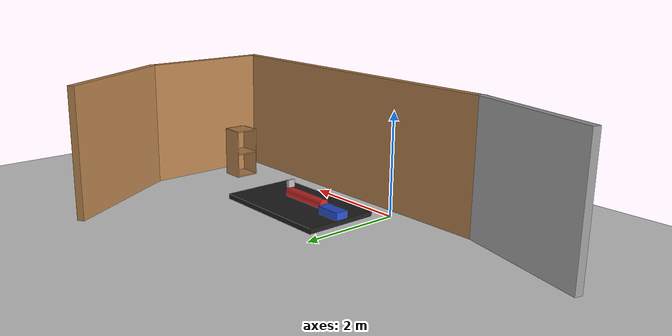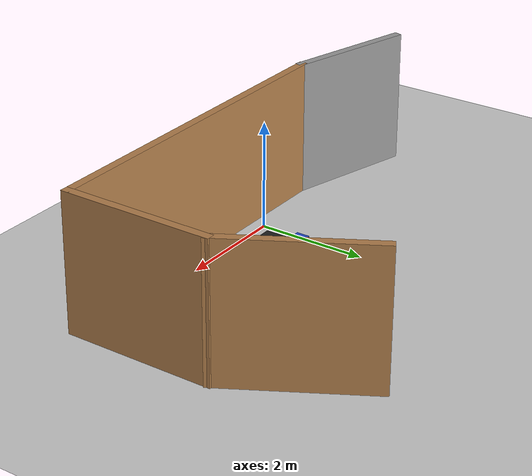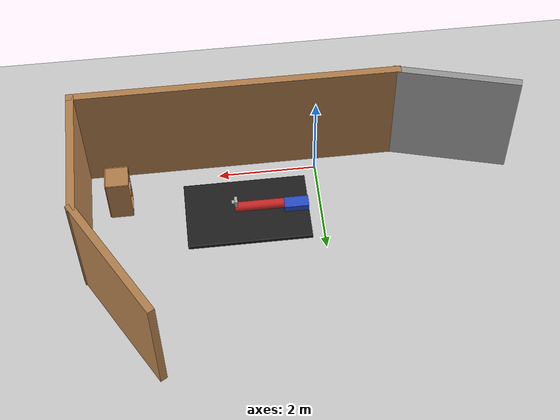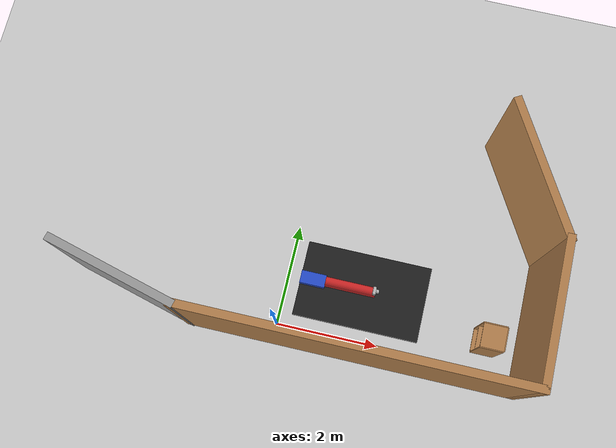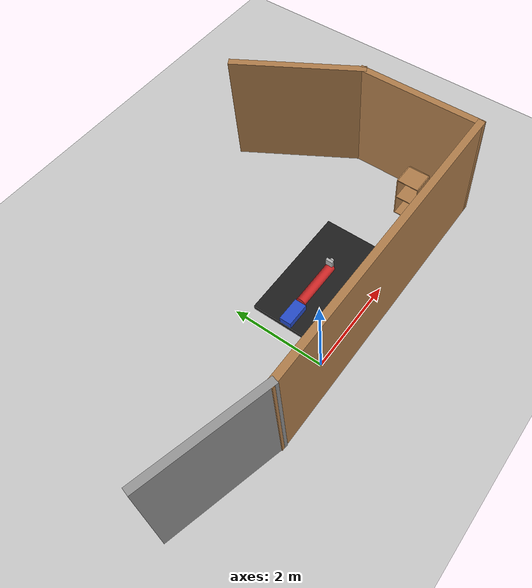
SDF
<sdf version="1.7">
 <world name="default">
  <light name="sun" type="directional">
   <pose>0 0 10 0 -0 0</pose>
   <diffuse>0.8 0.8 0.8 1</diffuse>
   <specular>0.2 0.2 0.2 1</specular>
   <attenuation>
    <range>1000</range>
    <constant>0.9</constant>
    <linear>0.01</linear>
    <quadratic>0.001</quadratic>
   </attenuation>
   <direction>-0.5 0.1 -0.9</direction>
   <spot><inner_angle>0</inner_angle><outer_angle>0</outer_angle><falloff>0</falloff></spot>
  </light>
  <model name="ground_plane">
   <static>1</static>
   <link name="link">
    <collision name="collision">
     <geometry><plane><normal>0 0 1</normal><size>100 100</size></plane></geometry>
     <surface>
      <contact><collide_bitmask>65535</collide_bitmask></contact>
      <friction><ode><mu>100</mu><mu2>50</mu2></ode></friction>
     </surface>
    </collision>
    <visual name="visual">
     <cast_shadows>0</cast_shadows>
     <geometry><plane><normal>0 0 1</normal><size>100 100</size></plane></geometry>
     <material>
      <script><uri>file://media/materials/scripts/gazebo.material</uri><name>Gazebo/Grey</name></script>
     </material>
    </visual>
   </link>
  </model>
  <gravity>0 0 -9.8</gravity>
  <magnetic_field>6e-06 2.3e-05 -4.2e-05</magnetic_field>
  <atmosphere type="adiabatic"/>
  <physics type="ode">
   <max_step_size>0.001</max_step_size>
   <real_time_factor>1</real_time_factor>
   <real_time_update_rate>1000</real_time_update_rate>
  </physics>
  <scene><ambient>0.4 0.4 0.4 1</ambient><background>0.7 0.7 0.7 1</background><shadows>1</shadows></scene>
  <audio><device>default</device></audio>
  <spherical_coordinates>
   <surface_model>EARTH_WGS84</surface_model>
   <latitude_deg>0</latitude_deg>
   <longitude_deg>0</longitude_deg>
   <elevation>0</elevation>
   <heading_deg>0</heading_deg>
  </spherical_coordinates>
  <model name="dana_bot">
   <joint name="base_joint" type="fixed">
    <pose relative_to="__model__">1.5 1 0 0 -0 0</pose>
    <parent>world</parent>
    <child>base_link</child>
   </joint>
   <link name="base_link">
    <pose relative_to="base_joint">0 0 0 0 -0 0</pose>
    <inertial>
     <pose>0 0 0.05 0 -0 0</pose>
     <mass>12</mass>
     <inertia><ixx>2.26</ixx><ixy>0</ixy><ixz>0</ixz><iyy>6.26</iyy><iyz>0</iyz><izz>8.5</izz></inertia>
    </inertial>
    <collision name="base_link_collision">
     <pose>0 0 0.05 0 -0 0</pose>
     <geometry><box><size>2.5 1.5 0.1</size></box></geometry>
    </collision>
    <visual name="base_link_visual">
     <pose>0 0 0.05 0 -0 0</pose>
     <geometry><box><size>2.5 1.5 0.1</size></box></geometry>
     <material>
      <script><name>Gazebo/Black</name><uri>file://media/materials/scripts/gazebo.material</uri></script>
     </material>
    </visual>
   </link>
   <joint name="slider_joint" type="prismatic">
    <pose relative_to="base_link">-1 0 0.1 0 -0 0</pose>
    <parent>base_link</parent>
    <child>slider_link</child>
    <axis>
     <xyz>1 0 0</xyz>
     <limit><lower>0</lower><upper>2</upper><effort>100</effort><velocity>100</velocity></limit>
     <dynamics>
      <damping>10</damping>
      <friction>10</friction>
      <spring_reference>0</spring_reference>
      <spring_stiffness>0</spring_stiffness>
     </dynamics>
    </axis>
   </joint>
   <link name="slider_link">
    <pose relative_to="slider_joint">0 0 0 0 -0 0</pose>
    <inertial>
     <pose>0 0 0.075 0 -0 0</pose>
     <mass>0.5</mass>
     <inertia>
      <ixx>0.00354167</ixx>
      <ixy>0</ixy>
      <ixz>0</ixz>
      <iyy>0.0113542</iyy>
      <iyz>0</iyz>
      <izz>0.0130208</izz>
     </inertia>
    </inertial>
    <collision name="slider_link_collision">
     <pose>0 0 0.075 0 -0 0</pose>
     <geometry><box><size>0.5 0.25 0.15</size></box></geometry>
    </collision>
    <visual name="slider_link_visual">
     <pose>0 0 0.075 0 -0 0</pose>
     <geometry><box><size>0.5 0.25 0.15</size></box></geometry>
     <material>
      <script><name>Gazebo/Blue</name><uri>file://media/materials/scripts/gazebo.material</uri></script>
     </material>
    </visual>
   </link>
   <joint name="arm_joint" type="revolute">
    <pose relative_to="slider_link">0.25 0 0.15 0 -0 0</pose>
    <parent>slider_link</parent>
    <child>arm_link</child>
    <axis>
     <xyz>0 -1 0</xyz>
     <limit><lower>0</lower><upper>1.5708</upper><effort>100</effort><velocity>100</velocity></limit>
     <dynamics>
      <damping>10</damping>
      <friction>10</friction>
      <spring_reference>0</spring_reference>
      <spring_stiffness>0</spring_stiffness>
     </dynamics>
    </axis>
   </joint>
   <link name="arm_link">
    <pose relative_to="arm_joint">0 0 0 0 -0 0</pose>
    <inertial>
     <pose>0.545455 0 0.015909 3.14159 1.57079 3.14159</pose>
     <mass>1.1</mass>
     <inertia>
      <ixx>0.108868</ixx>
      <ixy>0</ixy>
      <ixz>0.00795455</ixz>
      <iyy>0.111652</iyy>
      <iyz>0</iyz>
      <izz>0.00815909</izz>
     </inertia>
    </inertial>
    <collision name="arm_link_collision">
     <pose>0.5 0 0 3.14159 1.57079 3.14159</pose>
     <geometry><cylinder><length>1</length><radius>0.1</radius></cylinder></geometry>
    </collision>
    <collision name="arm_link_fixed_joint_lump__camera_link_collision_1">
     <pose>1 0 0.175 0 -0 0</pose>
     <geometry><box><size>0.12 0.15 0.15</size></box></geometry>
    </collision>
    <visual name="arm_link_visual">
     <pose>0.5 0 0 3.14159 1.57079 3.14159</pose>
     <geometry><cylinder><length>1</length><radius>0.1</radius></cylinder></geometry>
     <material>
      <script><name>Gazebo/Red</name><uri>file://media/materials/scripts/gazebo.material</uri></script>
     </material>
    </visual>
    <visual name="arm_link_fixed_joint_lump__camera_link_visual_1">
     <pose>0.97 0 0.175 0 -0 0</pose>
     <geometry><box><size>0.06 0.15 0.15</size></box></geometry>
    </visual>
    <visual name="arm_link_fixed_joint_lump__camera_link_visual_2">
     <pose>1.03 0 0.175 3.14159 1.57079 3.14159</pose>
     <geometry><cylinder><length>0.06</length><radius>0.04</radius></cylinder></geometry>
    </visual>
    <sensor name="my_camera" type="depth">
     <update_rate>20</update_rate>
     <visualize>1</visualize>
     <camera name="cam">
      <horizontal_fov>1.39626</horizontal_fov>
      <image><width>640</width><height>480</height><format>R8B8G8</format></image>
      <clip><near>0.02</near><far>300</far></clip>
      <noise><type>gaussian</type><mean>0</mean><stddev>0.007</stddev></noise>
     </camera>
     <plugin name="camera_controller" filename="libgazebo_ros_camera.so">
      <frame_name>camera_link_optical</frame_name>
      <min_depth>0.1</min_depth>
      <max_depth>500</max_depth>
     </plugin>
     <pose>1 0 0.175 0 -0 0</pose>
    </sensor>
   </link>
   <plugin name="gazebo_ros_joint_state_publisher" filename="libgazebo_ros_joint_state_publisher.so">
    <update_rate>20</update_rate>
    <joint_name>slider_joint</joint_name>
    <joint_name>arm_joint</joint_name>
   </plugin>
   <static>0</static>
   <plugin name="gazebo_ros_joint_pose_trajectory" filename="libgazebo_ros_joint_pose_trajectory.so">
    <update_rate>2</update_rate>
   </plugin>
  </model>
  <model name="first">
   <pose>0.416261 2.11006 0 0 -0 0</pose>
   <link name="Wall_0">
    <collision name="Wall_0_Collision">
     <geometry><box><size>2.5 0.15 2.5</size></box></geometry>
     <pose>0 0 1.25 0 -0 0</pose>
    </collision>
    <visual name="Wall_0_Visual">
     <pose>0 0 1.25 0 -0 0</pose>
     <geometry><box><size>2.5 0.15 2.5</size></box></geometry>
     <material>
      <script><uri>file://media/materials/scripts/gazebo.material</uri><name>Gazebo/Grey</name></script>
      <ambient>1 1 1 1</ambient>
     </material>
     <meta><layer>0</layer></meta>
    </visual>
    <pose>-3.1803 -2.12702 0 0 -0 -0.261799</pose>
   </link>
   <link name="Wall_1">
    <collision name="Wall_1_Collision">
     <geometry><box><size>6.5 0.15 2.5</size></box></geometry>
     <pose>0 0 1.25 0 -0 0</pose>
    </collision>
    <visual name="Wall_1_Visual">
     <pose>0 0 1.25 0 -0 0</pose>
     <geometry><box><size>6.5 0.15 2.5</size></box></geometry>
     <material>
      <script><uri>file://media/materials/scripts/gazebo.material</uri><name>Gazebo/Wood</name></script>
      <ambient>1 1 1 1</ambient>
     </material>
     <meta><layer>0</layer></meta>
    </visual>
    <pose>1.12966 -2.43113 0 0 -0 0</pose>
   </link>
   <link name="Wall_2">
    <collision name="Wall_2_Collision">
     <geometry><box><size>2.75 0.15 2.5</size></box></geometry>
     <pose>0 0 1.25 0 -0 0</pose>
    </collision>
    <visual name="Wall_2_Visual">
     <pose>0 0 1.25 0 -0 0</pose>
     <geometry><box><size>2.75 0.15 2.5</size></box></geometry>
     <material>
      <script><uri>file://media/materials/scripts/gazebo.material</uri><name>Gazebo/Wood</name></script>
      <ambient>1 1 1 1</ambient>
     </material>
     <meta><layer>0</layer></meta>
    </visual>
    <pose>4.30466 -1.13113 0 0 -0 1.5708</pose>
   </link>
   <link name="Wall_3">
    <collision name="Wall_3_Collision">
     <geometry><box><size>2.75 0.15 2.5</size></box></geometry>
     <pose>0 0 1.25 0 -0 0</pose>
    </collision>
    <visual name="Wall_3_Visual">
     <pose>0 0 1.25 0 -0 0</pose>
     <geometry><box><size>2.75 0.15 2.5</size></box></geometry>
     <material>
      <script><uri>file://media/materials/scripts/gazebo.material</uri><name>Gazebo/Wood</name></script>
      <ambient>1 1 1 1</ambient>
     </material>
     <meta><layer>0</layer></meta>
    </visual>
    <pose>3.65467 1.2947 0 0 -0 2.0944</pose>
   </link>
   <static>1</static>
  </model>
  <model name="cabinet">
   <static>1</static>
   <link name="cabinet_bottom_plate">
    <inertial>
     <pose>0 0 -1 0 -0 0</pose>
     <inertia><ixx>2.05</ixx><ixy>0</ixy><ixz>0</ixz><iyy>2.05</iyy><iyz>0</iyz><izz>2.05</izz></inertia>
     <mass>25</mass>
    </inertial>
    <collision name="cabinet_bottom_plate_geom">
     <pose>0 0 0.01 0 -0 0</pose>
     <geometry><box><size>0.45 0.45 0.02</size></box></geometry>
    </collision>
    <visual name="cabinet_bottom_plate_geom_visual">
     <pose>0 0 0.01 0 -0 0</pose>
     <geometry><box><size>0.45 0.45 0.02</size></box></geometry>
     <material>
      <script><uri>file://media/materials/scripts/gazebo.material</uri><name>Gazebo/Wood</name></script>
     </material>
    </visual>
    <collision name="cabinet_bottom_plate_geom_cabinet_back_plate">
     <pose>0.235 0 0.51 0 -0 0</pose>
     <geometry><box><size>0.02 0.45 1.02</size></box></geometry>
    </collision>
    <visual name="cabinet_bottom_plate_geom_cabinet_back_plate_visual">
     <pose>0.235 0 0.51 0 -0 0</pose>
     <geometry><box><size>0.02 0.45 1.02</size></box></geometry>
     <material>
      <script><uri>file://media/materials/scripts/gazebo.material</uri><name>Gazebo/Wood</name></script>
     </material>
    </visual>
    <collision name="cabinet_bottom_plate_geom_cabinet_left_plate">
     <pose>0 0.235 0.51 0 -0 0</pose>
     <geometry><box><size>0.45 0.02 1.02</size></box></geometry>
    </collision>
    <visual name="cabinet_bottom_plate_geom_cabinet_left_plate_visual">
     <pose>0 0.235 0.51 0 -0 0</pose>
     <geometry><box><size>0.45 0.02 1.02</size></box></geometry>
     <material>
      <script><uri>file://media/materials/scripts/gazebo.material</uri><name>Gazebo/Wood</name></script>
     </material>
    </visual>
    <collision name="cabinet_bottom_plate_geom_cabinet_middle_plate">
     <pose>0 0 0.51 0 -0 0</pose>
     <geometry><box><size>0.45 0.45 0.02</size></box></geometry>
    </collision>
    <visual name="cabinet_bottom_plate_geom_cabinet_middle_plate_visual">
     <pose>0 0 0.51 0 -0 0</pose>
     <geometry><box><size>0.45 0.45 0.02</size></box></geometry>
     <material>
      <script><uri>file://media/materials/scripts/gazebo.material</uri><name>Gazebo/Wood</name></script>
     </material>
    </visual>
    <collision name="cabinet_bottom_plate_geom_cabinet_right_plate">
     <pose>0 -0.235 0.51 0 -0 0</pose>
     <geometry><box><size>0.45 0.02 1.02</size></box></geometry>
    </collision>
    <visual name="cabinet_bottom_plate_geom_cabinet_right_plate_visual">
     <pose>0 -0.235 0.51 0 -0 0</pose>
     <geometry><box><size>0.45 0.02 1.02</size></box></geometry>
     <material>
      <script><uri>file://media/materials/scripts/gazebo.material</uri><name>Gazebo/Wood</name></script>
     </material>
    </visual>
    <collision name="cabinet_bottom_plate_geom_cabinet_top_plate">
     <pose>0 0 1.01 0 -0 0</pose>
     <geometry><box><size>0.45 0.45 0.02</size></box></geometry>
    </collision>
    <visual name="cabinet_bottom_plate_geom_cabinet_top_plate_visual">
     <pose>0 0 1.01 0 -0 0</pose>
     <geometry><box><size>0.45 0.45 0.02</size></box></geometry>
     <material>
      <script><uri>file://media/materials/scripts/gazebo.material</uri><name>Gazebo/Wood</name></script>
     </material>
    </visual>
   </link>
   <pose>4.02412 0.554815 0 0 -0 0</pose>
  </model>
 </world>
</sdf>
